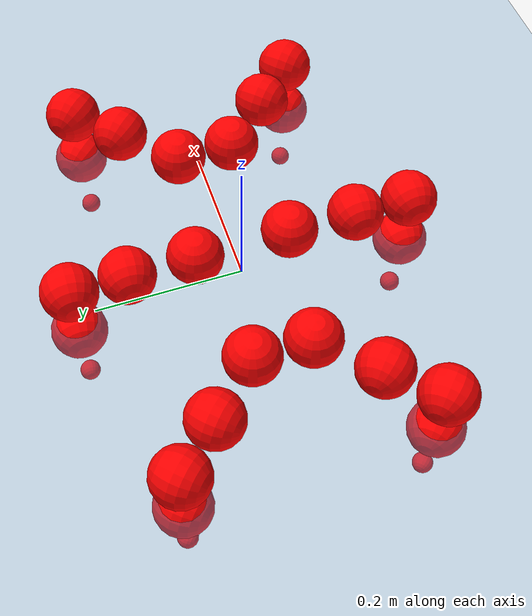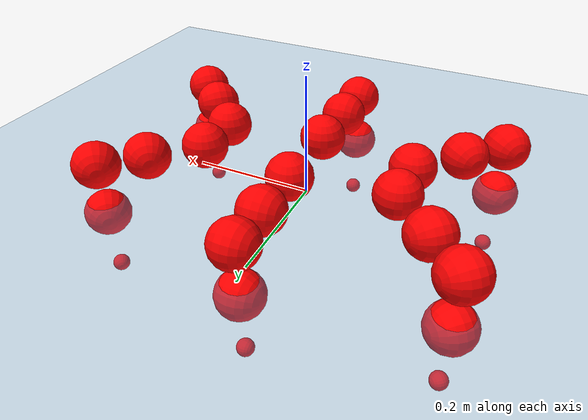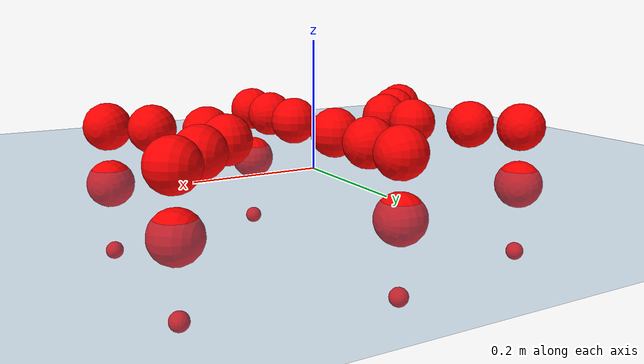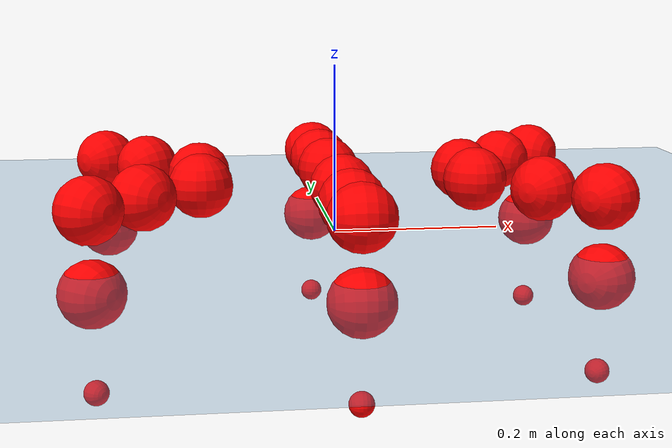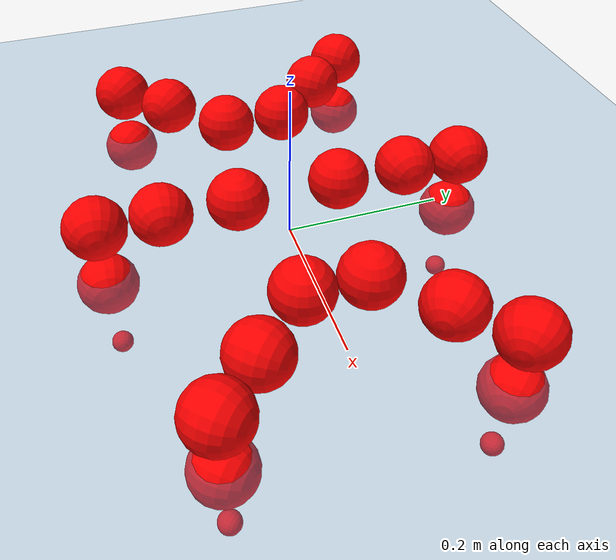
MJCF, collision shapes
<mujoco model="Golem">
  <compiler angle="radian" assetdir="assets" balanceinertia="true" inertiafromgeom="false"/>

  <option timestep="0.005" density="1.2" viscosity="2e-05"/>

  <size nkey="1"/>

  <visual>
    <quality shadowsize="8192"/>
    <map shadowclip="0.5"/>
  </visual>

  <default>
    <default class="/">
      <joint armature="0.01" damping="0.01" frictionloss="0.01"/>
      <geom contype="0" conaffinity="0" group="1" solref="-1000 -80"/>
      <site size="0.01 0.005 0.005" group="5"/>
      <general forcelimited="true" biastype="affine" gainprm="25" biasprm="0 -25 -0.5"/>
      <default class="visual">
        <geom type="mesh" group="2"/>
      </default>
      <default class="collision">
        <geom group="3"/>
      </default>
      <default class="foot">
        <geom size="0.01 0 0" condim="6" group="4" priority="1" solimp="0.015 1 0.01"/>
      </default>
      <default class="reward_collision_sphere">
        <geom group="5" rgba="1 0 0 1"/>
      </default>
    </default>
  </default>

  <asset>
    <texture type="skybox" colorspace="auto" name="//unnamed_texture_0" builtin="gradient" rgb1="0.95 0.95 0.95" rgb2="0.95 0.95 0.95" width="100" height="600"/>
    <texture type="2d" colorspace="auto" name="texplane" builtin="checker" rgb1="0.345 0.575 0.748" rgb2="0.345 0.575 0.748" markrgb="1 1 1" width="512" height="512"/>
    <material name="MatPlane" class="/" texture="texplane" texuniform="true" texrepeat="2 2" specular="0.9"/>
    <mesh name="body" class="/" file="body.stl" scale="0.001 0.001 0.001"/>
    <mesh name="coxa" class="/" file="coxa.stl" scale="0.001 0.001 0.001"/>
    <mesh name="femur" class="/" file="femur.stl" scale="0.001 0.001 0.001"/>
    <mesh name="tibia" class="/" file="tibia.stl" scale="0.001 0.001 0.001"/>
    <mesh name="tarsus" class="/" file="tarsus.stl" scale="0.001 0.001 0.001"/>
  </asset>

  <worldbody>
    <geom name="floor" class="/" size="100 100 0.125" type="plane" group="0" material="MatPlane"/>
    <light name="toplight_shadow" class="/" pos="0 0 5" dir="0.0990148 0.0990148 -0.990148" type="directional" ambient="0.04 0.04 0.04" diffuse="0.55 0.55 0.55" specular="0.12 0.12 0.12"/>
    <light name="toplight_fill" class="/" pos="0 0 5" dir="0.0990148 0.0990148 -0.990148" type="directional" castshadow="false" ambient="0.04 0.04 0.04" diffuse="0.3 0.3 0.3" specular="0.08 0.08 0.08"/>
    <body name="trunk" pos="0.000440714 -0.000900213 -0.00085939" quat="1 -1.30041e-05 2.29715e-05 -2.51866e-05">
      <inertial pos="0.000752575 0.000160324 -0.00361277" quat="1 0.000337823 0.000140906 -0.000376842" mass="2.96087" diaginertia="0.0116587 0.00184055 0.0129629"/>
      <joint name="//unnamed_joint_0" type="free"/>
      <geom name="//unnamed_geom_1" class="/" pos="0 0 0.0674821" quat="1 0 0 0" type="mesh" rgba="0.9 0.9 0.9 1" mesh="body"/>
      <site name="imu" class="/" pos="0.134416 -0.000319943 0.106266" size="0.00933114"/>
      <camera name="track" class="/" pos="0 -1.42999 0" quat="0.707107 0.707107 0 0" mode="trackcom"/>
      <camera name="ego_camera" class="/" pos="0.133892 0 0.105441" quat="-0.5 -0.5 0.5 0.5"/>
      <body name="coxa_RR" pos="-0.18242 -0.0596806 0.0675397" quat="0.382773 1.99043e-05 3.59132e-05 -0.923842">
        <inertial pos="-0.0002988 -0.000660619 0.00125556" quat="0.999993 -0.00197311 -0.00250457 0.00201779" mass="0.162109" diaginertia="0.011777 0.00189789 0.0132145"/>
        <joint name="coxa_joint_RR" class="/" pos="0 0 0" axis="-0.000187345 -0.00459532 -0.999989" range="-3.13642 3.13752" armature="0.00944244" damping="0.00709674" frictionloss="0.00932243"/>
        <geom name="//unnamed_geom_2" class="/" type="mesh" rgba="0.2 0.2 0.2 1" mesh="coxa"/>
        <geom name="//unnamed_geom_3" class="reward_collision_sphere" size="0.0373245" pos="-0.0308981 0 0"/>
        <body name="femur_RR" pos="0.0612235 0.000825168 0.00034463" quat="0.500062 -0.49996 0.49988 0.500098">
          <inertial pos="0.00076885 0.000267009 -0.000129622" quat="1 -0.000386335 -0.000208127 0.000248662" mass="0.162672" diaginertia="0.0116164 0.00187641 0.0132187"/>
          <joint name="femur_joint_RR" class="/" pos="0 0 0" axis="-8.84737e-05 0.000431075 -1" range="-3.1372 3.15428" armature="0.00916708" damping="0.00136592" frictionloss="0.00918499"/>
          <geom name="//unnamed_geom_4" class="/" type="mesh" rgba="0.9 0.9 0.9 1" mesh="femur"/>
          <geom name="//unnamed_geom_5" class="reward_collision_sphere" size="0.0373245"/>
          <body name="tibia_RR" pos="0.00111011 -0.0783083 0.00124616" quat="0.000130552 1 0.000150411 -2.9461e-05">
            <inertial pos="0.000184519 -0.000307735 0.000234648" quat="1 -6.48827e-05 -0.000180671 4.3547e-05" mass="0.163221" diaginertia="0.0117282 0.00188294 0.0133258"/>
            <joint name="tibia_joint_RR" class="/" pos="0 0 0" axis="-0.00105969 0.00142579 0.999998" range="-3.15167 3.12057" armature="0.00912856" damping="0" frictionloss="0.00934624"/>
            <geom name="//unnamed_geom_6" class="/" type="mesh" rgba="0.2 0.2 0.2 1" mesh="tibia"/>
            <geom name="//unnamed_geom_7" class="reward_collision_sphere" size="0.0373245"/>
            <body name="tarsus_RR" pos="0.0903573 0.000244306 -0.00044844" quat="1 -7.12638e-05 4.90662e-05 -9.33826e-05">
              <inertial pos="0.0630464 0.000747788 -0.000780624" quat="0.500661 0.500854 0.500004 0.498478" mass="0.163462" diaginertia="0.011658 0.00185665 0.0130878"/>
              <joint name="tarsus_joint_RR" class="/" pos="0 0 0" axis="-0.00124681 0.00642091 0.999979" stiffness="0.00169889" range="-3.13455 3.12058" armature="0.00919357" damping="0.0418364" frictionloss="0.00967729"/>
              <geom name="//unnamed_geom_8" class="/" type="mesh" rgba="0.9 0.9 0.9 1" mesh="tarsus"/>
              <geom name="foot_1" class="foot" size="0.00922168" pos="0.115353 0 0" quat="0 -0.707107 0 0.707107"/>
              <geom name="//unnamed_geom_10" class="reward_collision_sphere" size="0.0373245"/>
              <geom name="//unnamed_geom_11" class="reward_collision_sphere" size="0.0139967" pos="0.110718 0 0"/>
              <site name="foot_1" class="foot" pos="0.115353 0 0" quat="0 -0.707107 0 0.707107" size="0.00933114"/>
            </body>
          </body>
        </body>
      </body>
      <body name="coxa_RM" pos="0.000149651 -0.0950102 0.0679329" quat="0.70733 1.10748e-05 -0.000281133 -0.706883">
        <inertial pos="-0.000495716 0.000108704 0.00117118" quat="0.999995 0.000410154 0.00218556 0.00240885" mass="0.163557" diaginertia="0.0117026 0.00185359 0.0128875"/>
        <joint name="coxa_joint_RM" class="/" pos="0 0 0" axis="0.00305494 -0.000919226 -0.999995" range="-3.13223 3.14673" armature="0.00924893" damping="0.0108299" frictionloss="0.00882813"/>
        <geom name="//unnamed_geom_12" class="/" type="mesh" rgba="0.2 0.2 0.2 1" mesh="coxa"/>
        <geom name="//unnamed_geom_13" class="reward_collision_sphere" size="0.0373245" pos="-0.0308981 0 0"/>
        <body name="femur_RM" pos="0.0601064 -0.000949448 -0.00018658" quat="0.499906 -0.500024 0.500098 0.499971">
          <inertial pos="0.000432431 0.000299948 -2.02537e-05" quat="1 -0.000662946 -0.000136314 -0.000491234" mass="0.164437" diaginertia="0.0116956 0.0018949 0.0131729"/>
          <joint name="femur_joint_RM" class="/" pos="0 0 0" axis="0.00115339 0.00467494 -0.999988" range="-3.14287 3.14017" armature="0.00965789" damping="0.00806047" frictionloss="0.00934866"/>
          <geom name="//unnamed_geom_14" class="/" type="mesh" rgba="0.9 0.9 0.9 1" mesh="femur"/>
          <geom name="//unnamed_geom_15" class="reward_collision_sphere" size="0.0373245"/>
          <body name="tibia_RM" pos="0.000396182 -0.0756189 -2.00141e-05" quat="6.33836e-05 1 -3.28922e-05 -2.81523e-05">
            <inertial pos="-0.000740468 -0.000744001 -0.000213896" quat="1 -1.63418e-05 9.37726e-06 -1.50275e-05" mass="0.163201" diaginertia="0.011598 0.0018921 0.0130079"/>
            <joint name="tibia_joint_RM" class="/" pos="0 0 0" axis="0.000778814 -0.000681265 0.999999" range="-3.1399 3.15989" armature="0.00938706" damping="0.010681" frictionloss="0.00954273"/>
            <geom name="//unnamed_geom_16" class="/" type="mesh" rgba="0.2 0.2 0.2 1" mesh="tibia"/>
            <geom name="//unnamed_geom_17" class="reward_collision_sphere" size="0.0373245"/>
            <body name="tarsus_RM" pos="0.0902129 -0.000365974 -0.000274644" quat="1 -5.80968e-05 -9.92084e-06 -7.2168e-05">
              <inertial pos="0.062295 0.000746203 -0.000329106" quat="0.500361 0.49905 0.498419 0.502162" mass="0.163632" diaginertia="0.0116039 0.00189022 0.0131216"/>
              <joint name="tarsus_joint_RM" class="/" pos="0 0 0" axis="0.000291357 0.000241308 1" range="-3.15677 3.13334" armature="0.00905657" damping="0.00790251" frictionloss="0.00924811"/>
              <geom name="//unnamed_geom_18" class="/" type="mesh" rgba="0.9 0.9 0.9 1" mesh="tarsus"/>
              <geom name="foot_2" class="foot" size="0.00946847" pos="0.115353 0 0" quat="0 -0.707107 0 0.707107"/>
              <geom name="//unnamed_geom_20" class="reward_collision_sphere" size="0.0373245"/>
              <geom name="//unnamed_geom_21" class="reward_collision_sphere" size="0.0139967" pos="0.110718 0 0"/>
              <site name="foot_2" class="foot" pos="0.115353 0 0" quat="0 -0.707107 0 0.707107" size="0.00933114"/>
            </body>
          </body>
        </body>
      </body>
      <body name="coxa_RF" pos="0.18378 -0.0591249 0.0682709" quat="0.923863 0.00013226 9.48194e-05 -0.382722">
        <inertial pos="8.42014e-05 -0.000996012 -0.000345493" quat="1 9.44117e-05 -0.000106642 -3.77611e-05" mass="0.16314" diaginertia="0.0116108 0.00187091 0.0131695"/>
        <joint name="coxa_joint_RF" class="/" pos="0 0 0" axis="0.000722878 0.000257005 -1" range="-3.14277 3.1462" armature="0.0092052" damping="0.0144643" frictionloss="0.0091939"/>
        <geom name="//unnamed_geom_22" class="/" type="mesh" rgba="0.2 0.2 0.2 1" mesh="coxa"/>
        <geom name="//unnamed_geom_23" class="reward_collision_sphere" size="0.0373245" pos="-0.0308981 0 0"/>
        <body name="femur_RF" pos="0.0604914 -0.000809067 -0.000779448" quat="0.500001 -0.500009 0.499973 0.500017">
          <inertial pos="-0.000315578 0.000625922 -0.00031672" quat="0.999996 -0.00236078 0.000848564 -0.00111112" mass="0.164043" diaginertia="0.0115883 0.00190646 0.0131808"/>
          <joint name="femur_joint_RF" class="/" pos="0 0 0" axis="-0.000186137 -4.55364e-05 -1" range="-3.15032 3.13921" armature="0.00943504" damping="0.00682124" frictionloss="0.00907598"/>
          <geom name="//unnamed_geom_24" class="/" type="mesh" rgba="0.9 0.9 0.9 1" mesh="femur"/>
          <geom name="//unnamed_geom_25" class="reward_collision_sphere" size="0.0373245"/>
          <body name="tibia_RF" pos="6.97627e-05 -0.0767224 0.000508498" quat="2.37902e-05 1 3.05562e-05 6.47149e-06">
            <inertial pos="-0.000725451 0.000573419 -0.000454986" quat="1 6.67353e-05 -2.76163e-05 -8.26835e-05" mass="0.163878" diaginertia="0.0117907 0.00185907 0.0130618"/>
            <joint name="tibia_joint_RF" class="/" pos="0 0 0" axis="0.000833504 -0.00115687 0.999999" range="-3.14608 3.12547" armature="0.00943043" damping="0.00821546" frictionloss="0.00931103"/>
            <geom name="//unnamed_geom_26" class="/" type="mesh" rgba="0.2 0.2 0.2 1" mesh="tibia"/>
            <geom name="//unnamed_geom_27" class="reward_collision_sphere" size="0.0373245"/>
            <body name="tarsus_RF" pos="0.0911613 3.49631e-05 0.000126054" quat="1 7.83645e-05 3.78992e-05 -0.000212721">
              <inertial pos="0.0610205 0.00064635 8.02549e-05" quat="0.499727 0.500898 0.499945 0.499428" mass="0.162991" diaginertia="0.011674 0.00185958 0.0129043"/>
              <joint name="tarsus_joint_RF" class="/" pos="0 0 0" axis="-0.000661625 0.000406152 1" range="-3.13166 3.1302" armature="0.00890034" damping="0.000111631" frictionloss="0.00970704"/>
              <geom name="//unnamed_geom_28" class="/" type="mesh" rgba="0.9 0.9 0.9 1" mesh="tarsus"/>
              <geom name="foot_3" class="foot" size="0.0090939" pos="0.115353 0 0" quat="0 -0.707107 0 0.707107"/>
              <geom name="//unnamed_geom_30" class="reward_collision_sphere" size="0.0373245"/>
              <geom name="//unnamed_geom_31" class="reward_collision_sphere" size="0.0139967" pos="0.110718 0 0"/>
              <site name="foot_3" class="foot" pos="0.115353 0 0" quat="0 -0.707107 0 0.707107" size="0.00933114"/>
            </body>
          </body>
        </body>
      </body>
      <body name="coxa_LR" pos="-0.183206 0.0617874 0.0680472" quat="0.382695 0.000121476 6.25747e-05 0.923875">
        <inertial pos="-8.09271e-05 -0.000958247 -0.00039888" quat="0.999995 0.00310164 0.000154767 7.18359e-06" mass="0.162675" diaginertia="0.0114737 0.00187544 0.012919"/>
        <joint name="coxa_joint_LR" class="/" pos="0 0 0" axis="0.00449784 0.000314391 -0.99999" range="-3.14429 3.15477" armature="0.0097517" damping="0.00560521" frictionloss="0.00954246"/>
        <geom name="//unnamed_geom_32" class="/" type="mesh" rgba="0.2 0.2 0.2 1" mesh="coxa"/>
        <geom name="//unnamed_geom_33" class="reward_collision_sphere" size="0.0373245" pos="-0.0308981 0 0"/>
        <body name="femur_LR" pos="0.0612872 -0.00141713 -0.000115858" quat="0.500011 -0.49994 0.500002 0.500048">
          <inertial pos="0.000224949 -0.000296725 0.000166996" quat="0.99999 -0.00282824 0.00118258 -0.00315167" mass="0.162344" diaginertia="0.0116228 0.00186038 0.0130844"/>
          <joint name="femur_joint_LR" class="/" pos="0 0 0" axis="-0.00273033 -0.00135541 0.999995" stiffness="0.000275296" range="-3.13639 3.14429" armature="0.00958942" damping="0.0041871" frictionloss="0.00896015"/>
          <geom name="//unnamed_geom_34" class="/" type="mesh" rgba="0.9 0.9 0.9 1" mesh="femur"/>
          <geom name="//unnamed_geom_35" class="reward_collision_sphere" size="0.0373245"/>
          <body name="tibia_LR" pos="0.000769404 -0.078317 -0.00186446" quat="-4.84532e-05 1 -6.68853e-05 -4.90044e-05">
            <inertial pos="-0.000266584 -8.48139e-05 3.44698e-05" quat="0.999998 0.00120103 0.00141303 0.000886845" mass="0.16085" diaginertia="0.0114319 0.0018454 0.0128898"/>
            <joint name="tibia_joint_LR" class="/" pos="0 0 0" axis="0.00540386 -0.00146501 -0.999984" range="-3.1227 3.14827" armature="0.00942797" damping="0.00415838" frictionloss="0.00920969"/>
            <geom name="//unnamed_geom_36" class="/" type="mesh" rgba="0.2 0.2 0.2 1" mesh="tibia"/>
            <geom name="//unnamed_geom_37" class="reward_collision_sphere" size="0.0373245"/>
            <body name="tarsus_LR" pos="0.0910491 0.000796557 0.00120255" quat="1 -0.000136704 0.000132429 -0.000140365">
              <inertial pos="0.0630268 0.000657256 -0.000650114" quat="0.500006 0.499988 0.500012 0.499994" mass="0.164305" diaginertia="0.011585 0.00188546 0.0130783"/>
              <joint name="tarsus_joint_LR" class="/" pos="0 0 0" axis="0.00264569 -0.000632375 -0.999996" range="-3.13324 3.14363" armature="0.00928275" damping="0.00363768" frictionloss="0.00925656"/>
              <geom name="//unnamed_geom_38" class="/" type="mesh" rgba="0.9 0.9 0.9 1" mesh="tarsus"/>
              <geom name="foot_4" class="foot" size="0.00882139" pos="0.115353 0 0" quat="0.707107 0 -0.707107 0"/>
              <geom name="//unnamed_geom_40" class="reward_collision_sphere" size="0.0373245"/>
              <geom name="//unnamed_geom_41" class="reward_collision_sphere" size="0.0139967" pos="0.110718 0 0"/>
              <site name="foot_4" class="foot" pos="0.115353 0 0" quat="0.707107 0 -0.707107 0" size="0.00933114"/>
            </body>
          </body>
        </body>
      </body>
      <body name="coxa_LM" pos="-0.00149052 0.0940154 0.0674041" quat="0.707106 5.02125e-05 -0.000226451 0.707108">
        <inertial pos="0.000497289 0.000235034 0.000444678" quat="0.999991 -0.00152726 -0.000776862 -0.00400678" mass="0.162974" diaginertia="0.0117433 0.00187721 0.0130474"/>
        <joint name="coxa_joint_LM" class="/" pos="0 0 0" axis="-0.000804095 0.000294293 -1" range="-3.14432 3.13299" armature="0.00899662" damping="0.00979115" frictionloss="0.00910921"/>
        <geom name="//unnamed_geom_42" class="/" type="mesh" rgba="0.2 0.2 0.2 1" mesh="coxa"/>
        <geom name="//unnamed_geom_43" class="reward_collision_sphere" size="0.0373245" pos="-0.0308981 0 0"/>
        <body name="femur_LM" pos="0.0582986 0.00152359 -0.00111092" quat="0.499842 -0.500068 0.499681 0.500408">
          <inertial pos="-0.000852543 0.000179418 0.000888482" quat="0.999998 0.00162765 0.000912597 -0.000865602" mass="0.163162" diaginertia="0.0115092 0.0018508 0.013031"/>
          <joint name="femur_joint_LM" class="/" pos="0 0 0" axis="-0.00111141 6.40689e-05 0.999999" stiffness="0.000548548" range="-3.13718 3.14801" armature="0.00894758" damping="0.000998794" frictionloss="0.00926876"/>
          <geom name="//unnamed_geom_44" class="/" type="mesh" rgba="0.9 0.9 0.9 1" mesh="femur"/>
          <geom name="//unnamed_geom_45" class="reward_collision_sphere" size="0.0373245"/>
          <body name="tibia_LM" pos="0.00121046 -0.0745559 0.00104576" quat="-0.000382726 1 7.78732e-05 -0.000307259">
            <inertial pos="0.000342062 -0.00151004 -0.000146837" quat="0.999991 0.00262025 -0.00253041 0.00222596" mass="0.162999" diaginertia="0.0115801 0.0018697 0.0130253"/>
            <joint name="tibia_joint_LM" class="/" pos="0 0 0" axis="0.000640927 0.00161794 -0.999998" range="-3.13693 3.14136" armature="0.00937194" damping="0" frictionloss="0.00972991"/>
            <geom name="//unnamed_geom_46" class="/" type="mesh" rgba="0.2 0.2 0.2 1" mesh="tibia"/>
            <geom name="//unnamed_geom_47" class="reward_collision_sphere" size="0.0373245"/>
            <body name="tarsus_LM" pos="0.090195 -0.00014656 -0.00176109" quat="1 -0.000253406 0.000224806 0.000335024">
              <inertial pos="0.0629936 6.35719e-05 0.000706862" quat="0.499969 0.499845 0.500131 0.500055" mass="0.15915" diaginertia="0.0115251 0.00183796 0.0127889"/>
              <joint name="tarsus_joint_LM" class="/" pos="0 0 0" axis="-0.000697226 -0.000810322 -0.999999" range="-3.12229 3.14608" armature="0.00935718" damping="0" frictionloss="0.0091317"/>
              <geom name="//unnamed_geom_48" class="/" type="mesh" rgba="0.9 0.9 0.9 1" mesh="tarsus"/>
              <geom name="foot_5" class="foot" size="0.00924052" pos="0.115353 0 0" quat="0.707107 0 -0.707107 0"/>
              <geom name="//unnamed_geom_50" class="reward_collision_sphere" size="0.0373245"/>
              <geom name="//unnamed_geom_51" class="reward_collision_sphere" size="0.0139967" pos="0.110718 0 0"/>
              <site name="foot_5" class="foot" pos="0.115353 0 0" quat="0.707107 0 -0.707107 0" size="0.00933114"/>
            </body>
          </body>
        </body>
      </body>
      <body name="coxa_LF" pos="0.184193 0.0602942 0.0671258" quat="0.92391 9.36472e-05 -6.28526e-05 0.382609">
        <inertial pos="0.000264303 -0.00023767 0.00068106" quat="0.999992 -0.000718376 0.00269215 0.0028275" mass="0.163173" diaginertia="0.0114645 0.00185971 0.0128967"/>
        <joint name="coxa_joint_LF" class="/" pos="0 0 0" axis="-0.00247217 -0.00170734 -0.999995" range="-3.12531 3.15396" armature="0.00933445" damping="0.000957513" frictionloss="0.00971994"/>
        <geom name="//unnamed_geom_52" class="/" type="mesh" rgba="0.2 0.2 0.2 1" mesh="coxa"/>
        <geom name="//unnamed_geom_53" class="reward_collision_sphere" size="0.0373245" pos="-0.0308981 0 0"/>
        <body name="femur_LF" pos="0.0609102 6.44904e-05 -0.000257283" quat="0.499927 -0.500062 0.500134 0.499878">
          <inertial pos="0.000689267 -0.00011548 -0.000393458" quat="0.999999 0.000519955 0.00143165 0.000420014" mass="0.161089" diaginertia="0.0115737 0.00185879 0.0131403"/>
          <joint name="femur_joint_LF" class="/" pos="0 0 0" axis="-0.00189194 0.00140156 0.999997" range="-3.15734 3.14872" armature="0.00923037" damping="0" frictionloss="0.00915362"/>
          <geom name="//unnamed_geom_54" class="/" type="mesh" rgba="0.9 0.9 0.9 1" mesh="femur"/>
          <geom name="//unnamed_geom_55" class="reward_collision_sphere" size="0.0373245"/>
          <body name="tibia_LF" pos="0.000745398 -0.0772778 -0.00044354" quat="1.1741e-05 1 -1.4025e-05 1.72656e-06">
            <inertial pos="6.12052e-05 -0.000575981 -0.000565021" quat="0.999999 -0.00110384 -0.000175067 0.000302018" mass="0.16379" diaginertia="0.0115523 0.00186177 0.0130237"/>
            <joint name="tibia_joint_LF" class="/" pos="0 0 0" axis="0.00054687 0.00201242 -0.999998" range="-3.1376 3.13417" armature="0.00979169" damping="0.00371066" frictionloss="0.00895533"/>
            <geom name="//unnamed_geom_56" class="/" type="mesh" rgba="0.2 0.2 0.2 1" mesh="tibia"/>
            <geom name="//unnamed_geom_57" class="reward_collision_sphere" size="0.0373245"/>
            <body name="tarsus_LF" pos="0.0901948 5.24916e-05 -0.000330479" quat="1 4.24087e-06 0.000170561 4.08312e-05">
              <inertial pos="0.0628203 -2.62709e-05 0.000870472" quat="0.503045 0.498566 0.499496 0.49888" mass="0.161226" diaginertia="0.011586 0.00186335 0.0129429"/>
              <joint name="tarsus_joint_LF" class="/" pos="0 0 0" axis="0.00439743 -0.00368224 -0.999984" stiffness="0.0315782" range="-3.1266 3.12231" armature="0.00933971" damping="0.0248975" frictionloss="0.00945593"/>
              <geom name="//unnamed_geom_58" class="/" type="mesh" rgba="0.9 0.9 0.9 1" mesh="tarsus"/>
              <geom name="foot_6" class="foot" size="0.0092048" pos="0.115353 0 0" quat="0.707107 0 -0.707107 0"/>
              <geom name="//unnamed_geom_60" class="reward_collision_sphere" size="0.0373245"/>
              <geom name="//unnamed_geom_61" class="reward_collision_sphere" size="0.0139967" pos="0.110718 0 0"/>
              <site name="foot_6" class="foot" pos="0.115353 0 0" quat="0.707107 0 -0.707107 0" size="0.00933114"/>
            </body>
          </body>
        </body>
      </body>
    </body>
  </worldbody>

  <contact>
    <pair class="/" geom1="floor" geom2="foot_1" name="//unnamed_contact_0"/>
    <pair class="/" geom1="floor" geom2="foot_2" name="//unnamed_contact_1"/>
    <pair class="/" geom1="floor" geom2="foot_3" name="//unnamed_contact_2"/>
    <pair class="/" geom1="floor" geom2="foot_4" name="//unnamed_contact_3"/>
    <pair class="/" geom1="floor" geom2="foot_5" name="//unnamed_contact_4"/>
    <pair class="/" geom1="floor" geom2="foot_6" name="//unnamed_contact_5"/>
  </contact>

  <actuator>
    <general name="coxa_joint_RR" class="/" joint="coxa_joint_RR" forcerange="-6.80812 6.80812" gainprm="22.5093" biasprm="0 -22.5093 -0.4796"/>
    <general name="femur_joint_RR" class="/" joint="femur_joint_RR" forcerange="-6.78632 6.78632" gainprm="22.5093" biasprm="0 -22.5093 -0.4796"/>
    <general name="tibia_joint_RR" class="/" joint="tibia_joint_RR" forcerange="-6.82393 6.82393" gainprm="22.5093" biasprm="0 -22.5093 -0.4796"/>
    <general name="tarsus_joint_RR" class="/" joint="tarsus_joint_RR" forcerange="-6.6586 6.6586" gainprm="22.5093" biasprm="0 -22.5093 -0.4796"/>
    <general name="coxa_joint_RM" class="/" joint="coxa_joint_RM" forcerange="-6.65529 6.65529" gainprm="22.5093" biasprm="0 -22.5093 -0.4796"/>
    <general name="femur_joint_RM" class="/" joint="femur_joint_RM" forcerange="-6.68748 6.68748" gainprm="22.5093" biasprm="0 -22.5093 -0.4796"/>
    <general name="tibia_joint_RM" class="/" joint="tibia_joint_RM" forcerange="-7.04236 7.04236" gainprm="22.5093" biasprm="0 -22.5093 -0.4796"/>
    <general name="tarsus_joint_RM" class="/" joint="tarsus_joint_RM" forcerange="-6.78522 6.78522" gainprm="22.5093" biasprm="0 -22.5093 -0.4796"/>
    <general name="coxa_joint_RF" class="/" joint="coxa_joint_RF" forcerange="-6.73483 6.73483" gainprm="22.5093" biasprm="0 -22.5093 -0.4796"/>
    <general name="femur_joint_RF" class="/" joint="femur_joint_RF" forcerange="-7.03857 7.03857" gainprm="22.5093" biasprm="0 -22.5093 -0.4796"/>
    <general name="tibia_joint_RF" class="/" joint="tibia_joint_RF" forcerange="-6.6057 6.6057" gainprm="22.5093" biasprm="0 -22.5093 -0.4796"/>
    <general name="tarsus_joint_RF" class="/" joint="tarsus_joint_RF" forcerange="-6.59988 6.59988" gainprm="22.5093" biasprm="0 -22.5093 -0.4796"/>
    <general name="coxa_joint_LR" class="/" joint="coxa_joint_LR" forcerange="-6.80781 6.80781" gainprm="22.5093" biasprm="0 -22.5093 -0.4796"/>
    <general name="femur_joint_LR" class="/" joint="femur_joint_LR" forcerange="-6.7498 6.7498" gainprm="22.5093" biasprm="0 -22.5093 -0.4796"/>
    <general name="tibia_joint_LR" class="/" joint="tibia_joint_LR" forcerange="-6.87976 6.87976" gainprm="22.5093" biasprm="0 -22.5093 -0.4796"/>
    <general name="tarsus_joint_LR" class="/" joint="tarsus_joint_LR" forcerange="-6.76905 6.76905" gainprm="22.5093" biasprm="0 -22.5093 -0.4796"/>
    <general name="coxa_joint_LM" class="/" joint="coxa_joint_LM" forcerange="-6.72429 6.72429" gainprm="22.5093" biasprm="0 -22.5093 -0.4796"/>
    <general name="femur_joint_LM" class="/" joint="femur_joint_LM" forcerange="-6.81505 6.81505" gainprm="22.5093" biasprm="0 -22.5093 -0.4796"/>
    <general name="tibia_joint_LM" class="/" joint="tibia_joint_LM" forcerange="-6.85735 6.85735" gainprm="22.5093" biasprm="0 -22.5093 -0.4796"/>
    <general name="tarsus_joint_LM" class="/" joint="tarsus_joint_LM" forcerange="-6.74225 6.74225" gainprm="22.5093" biasprm="0 -22.5093 -0.4796"/>
    <general name="coxa_joint_LF" class="/" joint="coxa_joint_LF" forcerange="-6.57523 6.57523" gainprm="22.5093" biasprm="0 -22.5093 -0.4796"/>
    <general name="femur_joint_LF" class="/" joint="femur_joint_LF" forcerange="-6.8432 6.8432" gainprm="22.5093" biasprm="0 -22.5093 -0.4796"/>
    <general name="tibia_joint_LF" class="/" joint="tibia_joint_LF" forcerange="-6.93299 6.93299" gainprm="22.5093" biasprm="0 -22.5093 -0.4796"/>
    <general name="tarsus_joint_LF" class="/" joint="tarsus_joint_LF" forcerange="-7.03695 7.03695" gainprm="22.5093" biasprm="0 -22.5093 -0.4796"/>
  </actuator>

  <sensor>
    <gyro site="imu" name="imu_angular_velocity"/>
    <velocimeter site="imu" name="imu_linear_velocity"/>
    <framelinvel objtype="site" objname="foot_1" name="foot_1_global_linear_velocity"/>
    <framelinvel objtype="site" objname="foot_2" name="foot_2_global_linear_velocity"/>
    <framelinvel objtype="site" objname="foot_3" name="foot_3_global_linear_velocity"/>
    <framelinvel objtype="site" objname="foot_4" name="foot_4_global_linear_velocity"/>
    <framelinvel objtype="site" objname="foot_5" name="foot_5_global_linear_velocity"/>
    <framelinvel objtype="site" objname="foot_6" name="foot_6_global_linear_velocity"/>
  </sensor>

  <keyframe>
    <key name="home" qpos="0 0 0.1457 1 0 0 0 0 0 0 0 0 0 0 0 0 0 0 0 0 0 0 0 0 0 0 0 0 0 0 0"/>
  </keyframe>
</mujoco>
